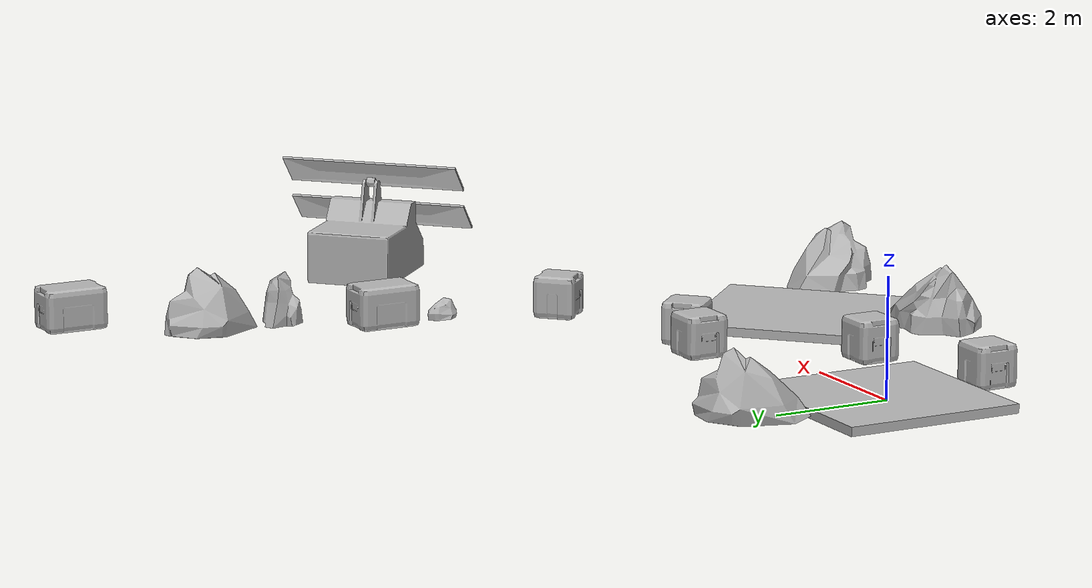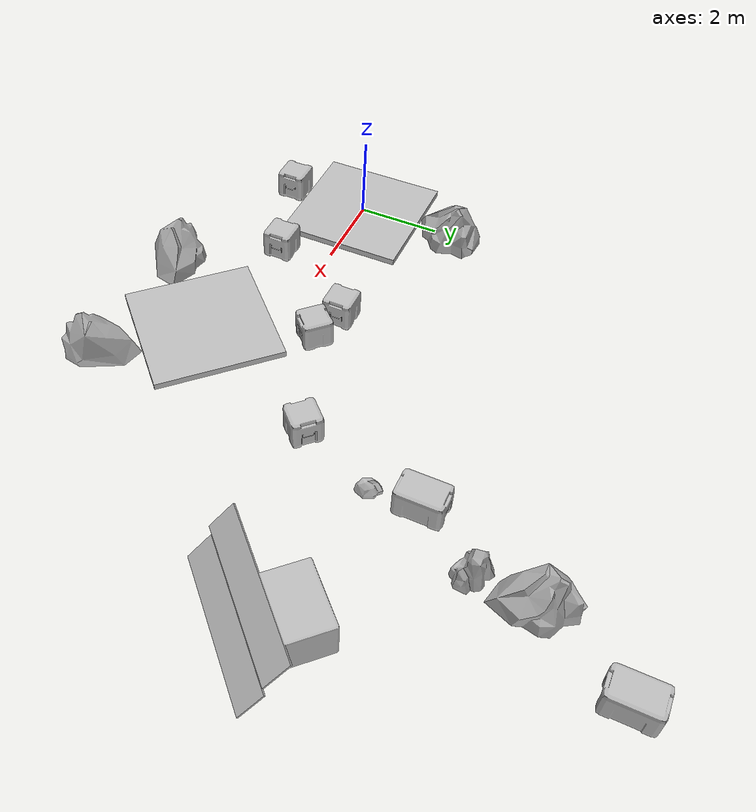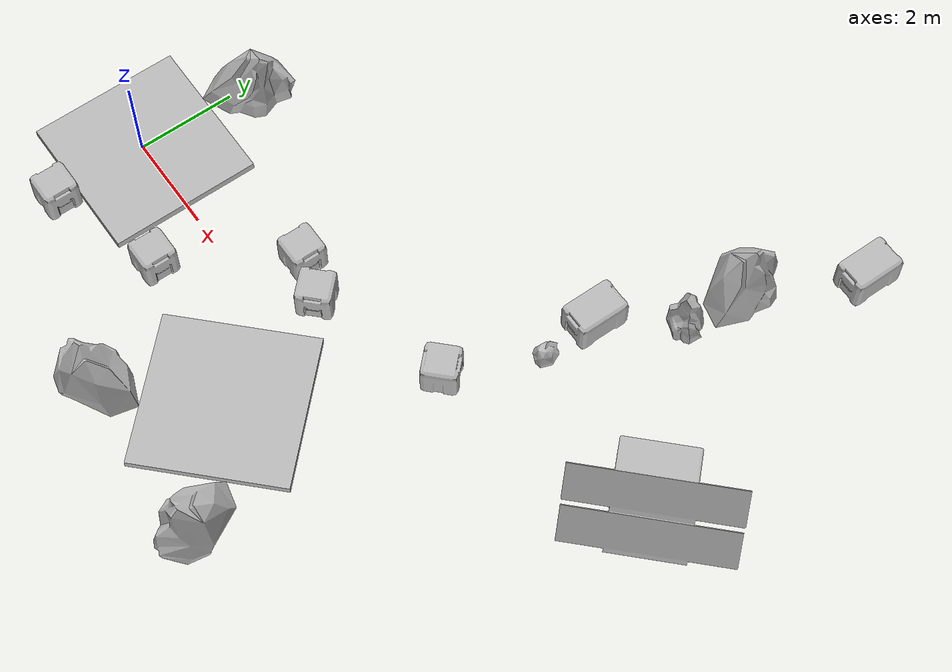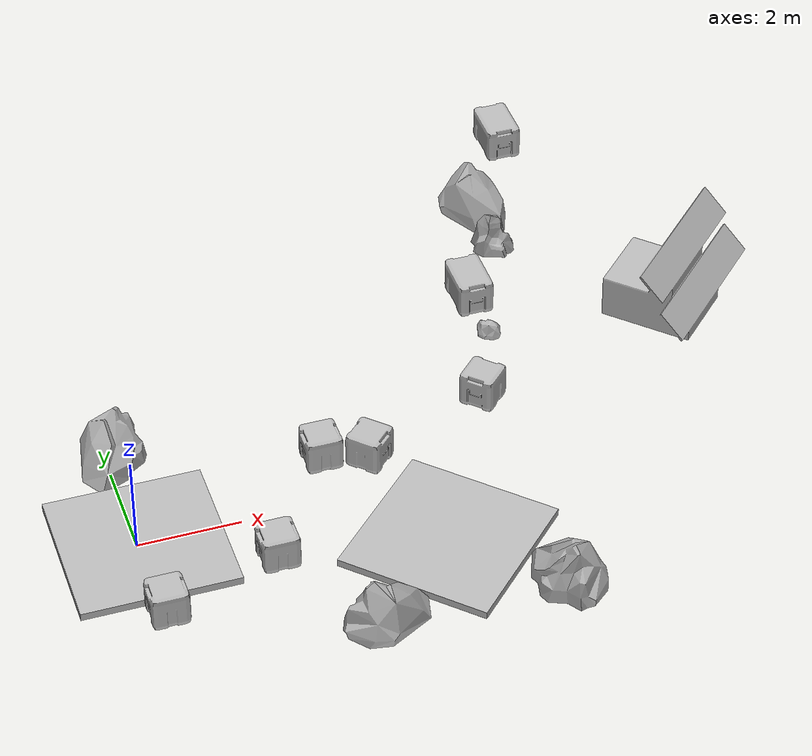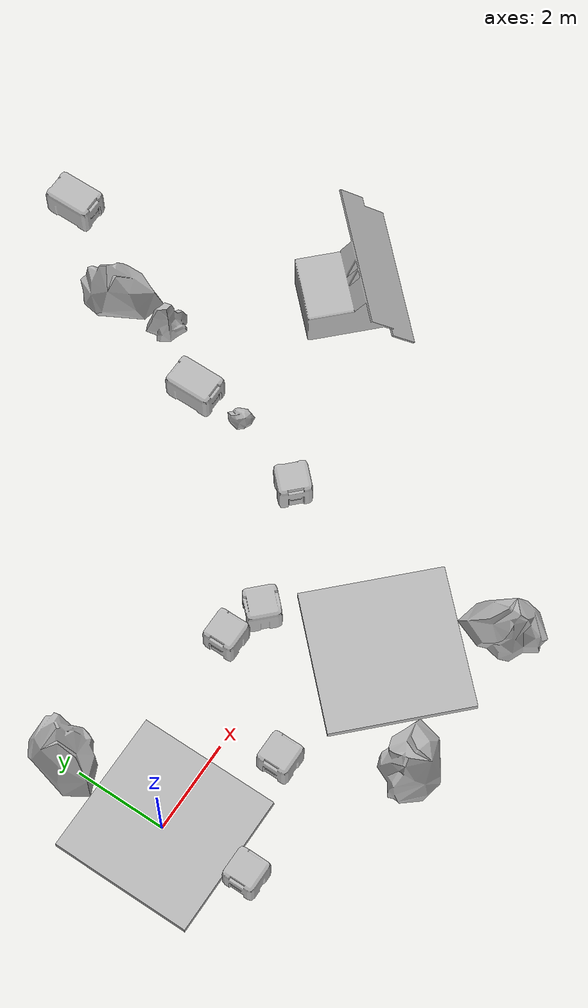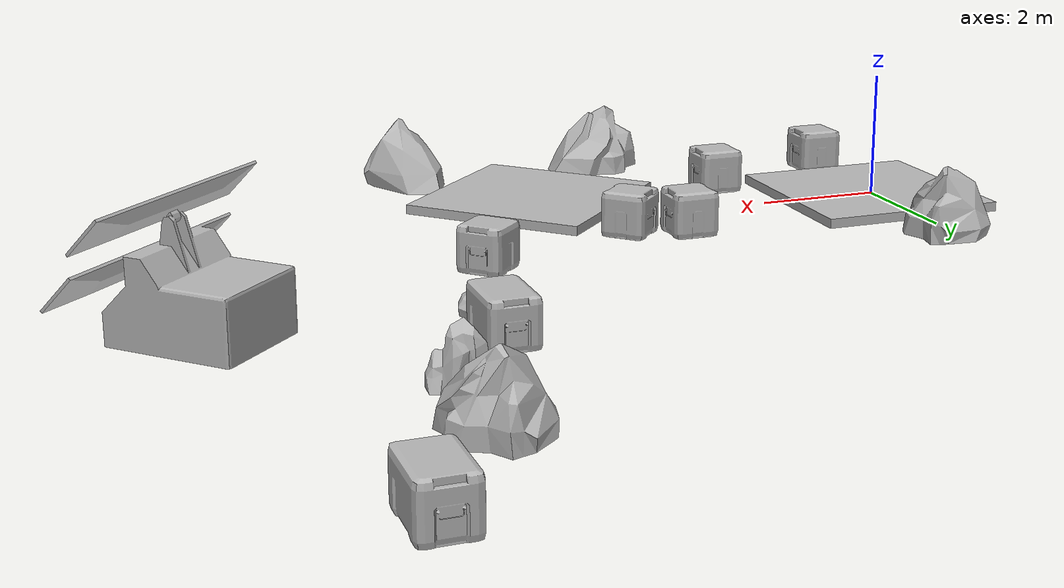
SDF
<sdf version="1.6">
 <world name="SRC_finals">
  <include>
   <name>walkway_1</name>
   <pose>0.09
      0
      -0.052151
      0
      0
      3.141592653589793</pose>
   <uri>model://walkway_finish_opposite</uri>
  </include>
  <include>
   <name>bling_1</name>
   <pose>0.09000000000000044
      2.624
      0
      0
      0
      -2.4492935982947064e-16</pose>
   <uri>model://mars_rock_3</uri>
  </include>
  <include>
   <name>bling_2</name>
   <pose>0.08999999999999976
      -1.924
      0
      0
      0
      3.141592653589793</pose>
   <uri>model://mars_crate</uri>
  </include>
  <include>
   <name>bling_3</name>
   <pose>2.376
      -1.1620000000000004
      0
      0
      0
      3.141592653589793</pose>
   <uri>model://mars_crate</uri>
  </include>
  <include>
   <name>bling_4</name>
   <pose>3.9
      1.1619999999999995
      0
      0
      0
      -2.4492935982947064e-16</pose>
   <uri>model://mars_crate</uri>
  </include>
  <include>
   <name>bling_5</name>
   <pose>4.77720271247462
      0.8924427124746184
      0
      0
      0
      -0.7853981633974485</pose>
   <uri>model://mars_crate</uri>
  </include>
  <include>
   <name>walkway_4</name>
   <pose>5.516364734528299
      -1.6171008265282991
      -0.052151
      0
      0
      0.7853981633974481</pose>
   <uri>model://walkway_finish_adjacent</uri>
  </include>
  <include>
   <name>bling_6</name>
   <pose>7.3718129283618
      -3.4725490203618
      0
      0
      0
      -2.3561944901923453</pose>
   <uri>model://mars_rock_3</uri>
  </include>
  <include>
   <name>bling_7</name>
   <pose>3.6609165406947977
      -3.4725490203617997
      0
      0
      0
      2.356194490192345</pose>
   <uri>model://mars_rock_3</uri>
  </include>
  <include>
   <name>bling_8</name>
   <pose>7.388783491110277
      1.898634089531215
      0
      0
      0
      0.7853981633974481</pose>
   <uri>model://mars_crate</uri>
  </include>
  <include>
   <name>bling_9</name>
   <pose>8.125551809732567
      3.679012169277029
      0
      0
      0
      1.5707963267948961</pose>
   <uri>model://mars_rock_1</uri>
  </include>
  <include>
   <name>bling_10</name>
   <pose>8.112266384783329
      4.839057594226267
      0
      0
      0
      1.5707963267948961</pose>
   <uri>model://mars_crate_long</uri>
  </include>
  <include>
   <pose>11.363825503004541
        3.77369823184486
        0.2
        0
        0
        -2.3561944901923453</pose>
   <uri>model://solar_array</uri>
  </include>
  <include>
   <name>bling_11</name>
   <pose>9.10331677335194
      6.280966961497462
      0
      0
      0
      1.5707963267948961</pose>
   <uri>model://mars_rock_2</uri>
  </include>
  <include>
   <name>bling_12</name>
   <pose>8.977899314046738
      7.653144420802665
      0
      0
      0
      0.785398163397448</pose>
   <uri>model://mars_rock_3</uri>
  </include>
  <include>
   <name>bling_13</name>
   <pose>10.339101440402704
      9.540647855503298
      0
      0
      0
      1.5707963267948961</pose>
   <uri>model://mars_crate_long</uri>
  </include>
 </world>
</sdf>
